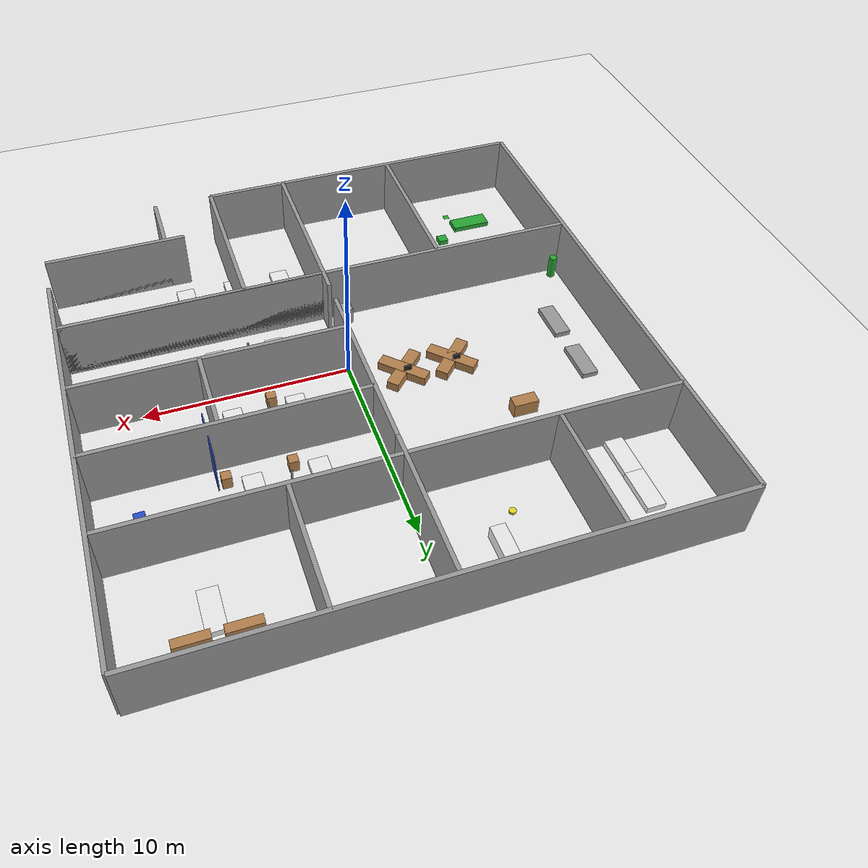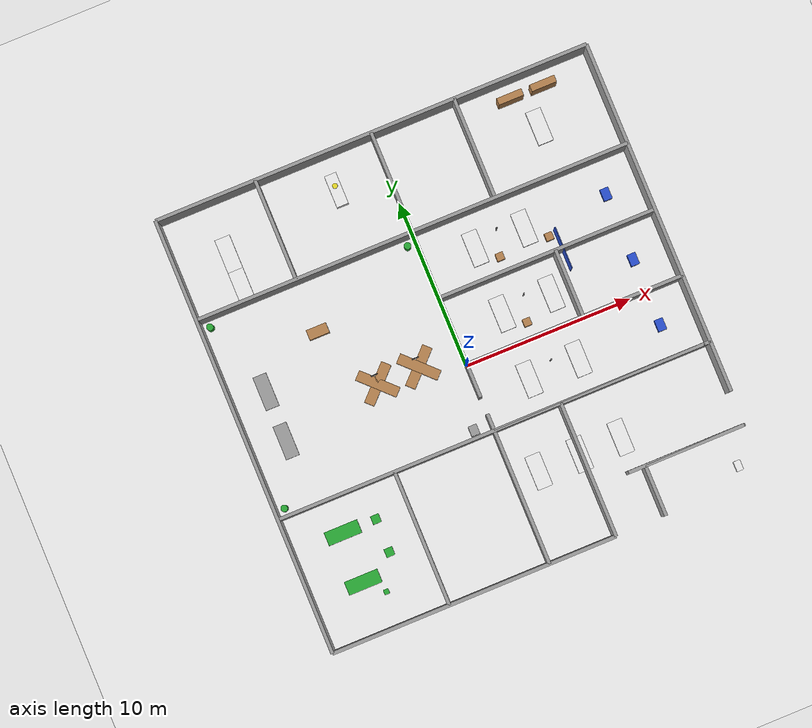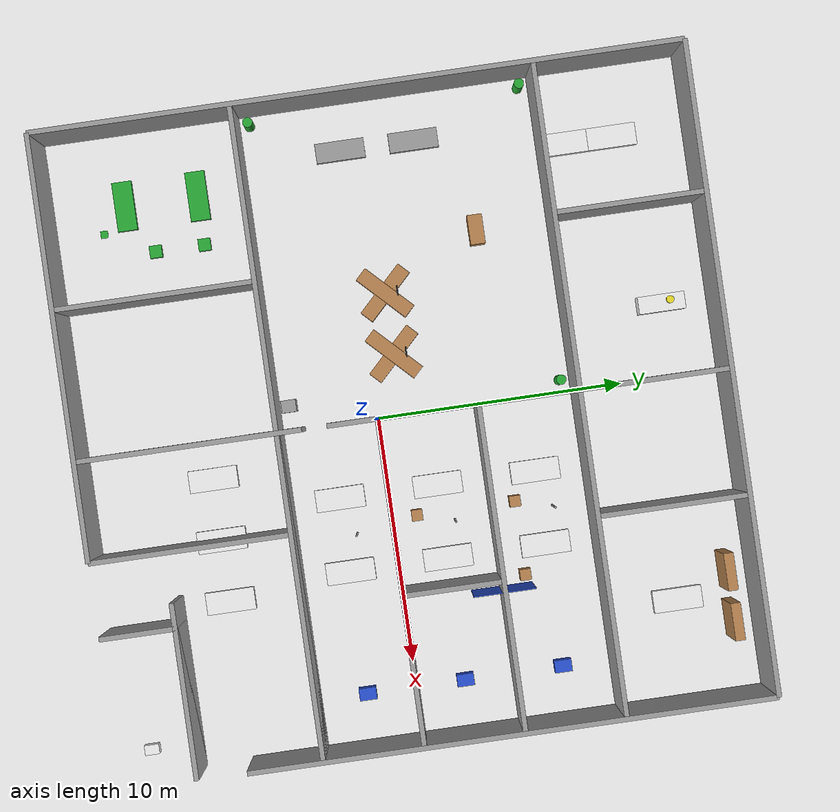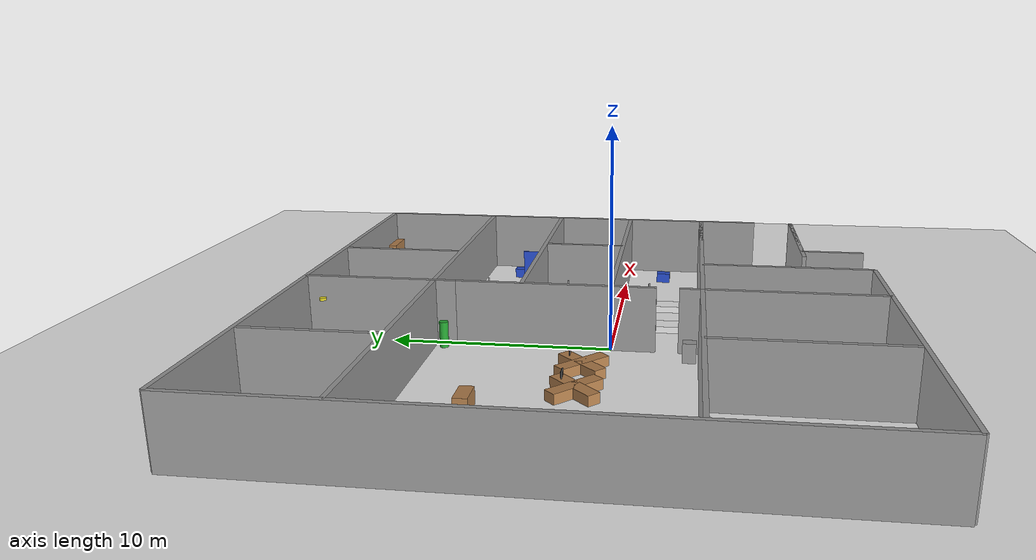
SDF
<?xml version="1.0" ?>
<sdf version="1.6">
  <world name="hospital">

    <!-- ==================== PHYSICS & SCENE ==================== -->
    <physics name="default_physics" default="0" type="ode">
      <max_step_size>0.001</max_step_size>
      <real_time_factor>1</real_time_factor>
      <real_time_update_rate>1000</real_time_update_rate>
    </physics>

    <scene>
      <ambient>0.6 0.6 0.6 1</ambient>
      <background>0.7 0.72 0.75 1</background>
      <shadows>1</shadows>
    </scene>

    <!-- ==================== LIGHTING ==================== -->
    <light name="sun" type="directional">
      <cast_shadows>1</cast_shadows>
      <pose>0 0 20 0 -0 0</pose>
      <diffuse>0.9 0.9 0.9 1</diffuse>
      <specular>0.3 0.3 0.3 1</specular>
      <direction>-0.3 0.2 -0.9</direction>
      <attenuation><range>1000</range><constant>0.9</constant><linear>0.01</linear><quadratic>0.001</quadratic></attenuation>
    </light>

    <light name="ceiling_main" type="point">
      <pose>0 0 3.8 0 0 0</pose>
      <diffuse>0.85 0.85 0.9 1</diffuse>
      <specular>0.1 0.1 0.1 1</specular>
      <attenuation><range>30</range><constant>0.5</constant><linear>0.05</linear><quadratic>0.002</quadratic></attenuation>
      <cast_shadows>0</cast_shadows>
    </light>

    <light name="ceiling_ward" type="point">
      <pose>-8 2 3.8 0 0 0</pose>
      <diffuse>0.85 0.85 0.9 1</diffuse>
      <specular>0.1 0.1 0.1 1</specular>
      <attenuation><range>25</range><constant>0.5</constant><linear>0.06</linear><quadratic>0.002</quadratic></attenuation>
      <cast_shadows>0</cast_shadows>
    </light>

    <light name="ceiling_rooms" type="point">
      <pose>8 3 3.8 0 0 0</pose>
      <diffuse>0.85 0.85 0.9 1</diffuse>
      <specular>0.1 0.1 0.1 1</specular>
      <attenuation><range>20</range><constant>0.5</constant><linear>0.07</linear><quadratic>0.002</quadratic></attenuation>
      <cast_shadows>0</cast_shadows>
    </light>

    <!-- ==================== GROUND PLANE ==================== -->
    <model name="ground_plane">
      <static>1</static>
      <link name="link">
        <collision name="collision">
          <geometry><plane><normal>0 0 1</normal><size>100 100</size></plane></geometry>
        </collision>
        <visual name="visual">
          <geometry><plane><normal>0 0 1</normal><size>100 100</size></plane></geometry>
          <material>
            <script><uri>file://media/materials/scripts/gazebo.material</uri><name>Gazebo/White</name></script>
          </material>
        </visual>
      </link>
    </model>

    <!-- ==================== HOSPITAL BUILDING ==================== -->

    <!-- OUTER WALLS -->
    <!-- North wall (top) -->
    <model name="wall_north">
      <static>1</static>
      <pose>0 14 1.5 0 0 0</pose>
      <link name="link">
        <collision name="c"><geometry><box><size>26 0.2 3</size></box></geometry></collision>
        <visual name="v"><geometry><box><size>26 0.2 3</size></box></geometry>
          <material><script><uri>file://media/materials/scripts/gazebo.material</uri><name>Gazebo/Grey</name></script></material>
        </visual>
      </link>
    </model>

    <!-- South wall (bottom) - two segments (notch bottom-right) -->
    <model name="wall_south_left">
      <static>1</static>
      <pose>-4.5 -12 1.5 0 0 0</pose>
      <link name="link">
        <collision name="c"><geometry><box><size>17 0.2 3</size></box></geometry></collision>
        <visual name="v"><geometry><box><size>17 0.2 3</size></box></geometry>
          <material><script><uri>file://media/materials/scripts/gazebo.material</uri><name>Gazebo/Grey</name></script></material>
        </visual>
      </link>
    </model>

    <model name="wall_south_right">
      <static>1</static>
      <pose>9.5 -9 1.5 0 0 0</pose>
      <link name="link">
        <collision name="c"><geometry><box><size>7 0.2 3</size></box></geometry></collision>
        <visual name="v"><geometry><box><size>7 0.2 3</size></box></geometry>
          <material><script><uri>file://media/materials/scripts/gazebo.material</uri><name>Gazebo/Grey</name></script></material>
        </visual>
      </link>
    </model>

    <!-- West wall -->
    <model name="wall_west">
      <static>1</static>
      <pose>-13 1 1.5 0 0 0</pose>
      <link name="link">
        <collision name="c"><geometry><box><size>0.2 26 3</size></box></geometry></collision>
        <visual name="v"><geometry><box><size>0.2 26 3</size></box></geometry>
          <material><script><uri>file://media/materials/scripts/gazebo.material</uri><name>Gazebo/Grey</name></script></material>
        </visual>
      </link>
    </model>

    <!-- East wall - two segments (notch bottom-right) -->
    <model name="wall_east_top">
      <static>1</static>
      <pose>13 3.5 1.5 0 0 0</pose>
      <link name="link">
        <collision name="c"><geometry><box><size>0.2 21 3</size></box></geometry></collision>
        <visual name="v"><geometry><box><size>0.2 21 3</size></box></geometry>
          <material><script><uri>file://media/materials/scripts/gazebo.material</uri><name>Gazebo/Grey</name></script></material>
        </visual>
      </link>
    </model>

    <model name="wall_east_notch_h">
      <static>1</static>
      <pose>10 -9 1.5 0 0 0</pose>
      <link name="link">
        <collision name="c"><geometry><box><size>6 0.2 3</size></box></geometry></collision>
        <visual name="v"><geometry><box><size>6 0.2 3</size></box></geometry>
          <material><script><uri>file://media/materials/scripts/gazebo.material</uri><name>Gazebo/Grey</name></script></material>
        </visual>
      </link>
    </model>

    <model name="wall_east_notch_v">
      <static>1</static>
      <pose>7 -10.5 1.5 0 0 0</pose>
      <link name="link">
        <collision name="c"><geometry><box><size>0.2 3 3</size></box></geometry></collision>
        <visual name="v"><geometry><box><size>0.2 3 3</size></box></geometry>
          <material><script><uri>file://media/materials/scripts/gazebo.material</uri><name>Gazebo/Grey</name></script></material>
        </visual>
      </link>
    </model>

    <!-- ====== INTERNAL WALLS ====== -->

    <!-- Main N-S divider (left/right split) -->
    <model name="wall_ns_main_top">
      <static>1</static>
      <pose>0 10.5 1.5 0 0 0</pose>
      <link name="link">
        <collision name="c"><geometry><box><size>0.2 7 3</size></box></geometry></collision>
        <visual name="v"><geometry><box><size>0.2 7 3</size></box></geometry>
          <material><script><uri>file://media/materials/scripts/gazebo.material</uri><name>Gazebo/Grey</name></script></material>
        </visual>
      </link>
    </model>

    <!-- gap for door at y=7, then continue -->
    <model name="wall_ns_main_mid">
      <static>1</static>
      <pose>0 2.5 1.5 0 0 0</pose>
      <link name="link">
        <collision name="c"><geometry><box><size>0.2 9 3</size></box></geometry></collision>
        <visual name="v"><geometry><box><size>0.2 9 3</size></box></geometry>
          <material><script><uri>file://media/materials/scripts/gazebo.material</uri><name>Gazebo/Grey</name></script></material>
        </visual>
      </link>
    </model>

    <model name="wall_ns_main_bot">
      <static>1</static>
      <pose>0 -7.5 1.5 0 0 0</pose>
      <link name="link">
        <collision name="c"><geometry><box><size>0.2 9 3</size></box></geometry></collision>
        <visual name="v"><geometry><box><size>0.2 9 3</size></box></geometry>
          <material><script><uri>file://media/materials/scripts/gazebo.material</uri><name>Gazebo/Grey</name></script></material>
        </visual>
      </link>
    </model>

    <!-- Top zone E-W divider -->
    <model name="wall_ew_top">
      <static>1</static>
      <pose>0 8 1.5 0 0 0</pose>
      <link name="link">
        <collision name="c"><geometry><box><size>26 0.2 3</size></box></geometry></collision>
        <visual name="v"><geometry><box><size>26 0.2 3</size></box></geometry>
          <material><script><uri>file://media/materials/scripts/gazebo.material</uri><name>Gazebo/Grey</name></script></material>
        </visual>
      </link>
    </model>

    <!-- Top-left room dividers -->
    <model name="wall_topleft_v">
      <static>1</static>
      <pose>-7 11 1.5 0 0 0</pose>
      <link name="link">
        <collision name="c"><geometry><box><size>0.2 6 3</size></box></geometry></collision>
        <visual name="v"><geometry><box><size>0.2 6 3</size></box></geometry>
          <material><script><uri>file://media/materials/scripts/gazebo.material</uri><name>Gazebo/Grey</name></script></material>
        </visual>
      </link>
    </model>

    <!-- Top-right room dividers -->
    <model name="wall_topright_v1">
      <static>1</static>
      <pose>5 11 1.5 0 0 0</pose>
      <link name="link">
        <collision name="c"><geometry><box><size>0.2 6 3</size></box></geometry></collision>
        <visual name="v"><geometry><box><size>0.2 6 3</size></box></geometry>
          <material><script><uri>file://media/materials/scripts/gazebo.material</uri><name>Gazebo/Grey</name></script></material>
        </visual>
      </link>
    </model>

    <!-- Right side patient room dividers (horizontal) -->
    <model name="wall_right_h1">
      <static>1</static>
      <pose>6.5 4 1.5 0 0 0</pose>
      <link name="link">
        <collision name="c"><geometry><box><size>13 0.2 3</size></box></geometry></collision>
        <visual name="v"><geometry><box><size>13 0.2 3</size></box></geometry>
          <material><script><uri>file://media/materials/scripts/gazebo.material</uri><name>Gazebo/Grey</name></script></material>
        </visual>
      </link>
    </model>

    <model name="wall_right_h2">
      <static>1</static>
      <pose>6.5 0 1.5 0 0 0</pose>
      <link name="link">
        <collision name="c"><geometry><box><size>13 0.2 3</size></box></geometry></collision>
        <visual name="v"><geometry><box><size>13 0.2 3</size></box></geometry>
          <material><script><uri>file://media/materials/scripts/gazebo.material</uri><name>Gazebo/Grey</name></script></material>
        </visual>
      </link>
    </model>

    <model name="wall_right_h3">
      <static>1</static>
      <pose>6.5 -4 1.5 0 0 0</pose>
      <link name="link">
        <collision name="c"><geometry><box><size>13 0.2 3</size></box></geometry></collision>
        <visual name="v"><geometry><box><size>13 0.2 3</size></box></geometry>
          <material><script><uri>file://media/materials/scripts/gazebo.material</uri><name>Gazebo/Grey</name></script></material>
        </visual>
      </link>
    </model>

    <!-- Right side room vertical divider (ICU corridor) -->
    <model name="wall_right_v_mid">
      <static>1</static>
      <pose>7 2 1.5 0 0 0</pose>
      <link name="link">
        <collision name="c"><geometry><box><size>0.2 4 3</size></box></geometry></collision>
        <visual name="v"><geometry><box><size>0.2 4 3</size></box></geometry>
          <material><script><uri>file://media/materials/scripts/gazebo.material</uri><name>Gazebo/Grey</name></script></material>
        </visual>
      </link>
    </model>

    <!-- Bottom zone E-W divider -->
    <model name="wall_ew_bottom">
      <static>1</static>
      <pose>0 -4 1.5 0 0 0</pose>
      <link name="link">
        <collision name="c"><geometry><box><size>26 0.2 3</size></box></geometry></collision>
        <visual name="v"><geometry><box><size>26 0.2 3</size></box></geometry>
          <material><script><uri>file://media/materials/scripts/gazebo.material</uri><name>Gazebo/Grey</name></script></material>
        </visual>
      </link>
    </model>

    <!-- Bottom-left waiting area internal wall -->
    <model name="wall_waiting_v">
      <static>1</static>
      <pose>-6 -8 1.5 0 0 0</pose>
      <link name="link">
        <collision name="c"><geometry><box><size>0.2 8 3</size></box></geometry></collision>
        <visual name="v"><geometry><box><size>0.2 8 3</size></box></geometry>
          <material><script><uri>file://media/materials/scripts/gazebo.material</uri><name>Gazebo/Grey</name></script></material>
        </visual>
      </link>
    </model>

    <!-- Bottom patient ward vertical dividers -->
    <model name="wall_botward_v1">
      <static>1</static>
      <pose>4 -8 1.5 0 0 0</pose>
      <link name="link">
        <collision name="c"><geometry><box><size>0.2 8 3</size></box></geometry></collision>
        <visual name="v"><geometry><box><size>0.2 8 3</size></box></geometry>
          <material><script><uri>file://media/materials/scripts/gazebo.material</uri><name>Gazebo/Grey</name></script></material>
        </visual>
      </link>
    </model>

    <!-- ==================== EQUIPMENT & FURNITURE ==================== -->

    <!-- === NURSE STATION AREA (open ward center-left) === -->
    <!-- Two curved desk units approximated with box models -->
    <model name="nurse_desk_1">
      <static>1</static>
      <pose>-5 1 0 0 0 0.785</pose>
      <link name="link">
        <collision name="c"><geometry><box><size>2.5 0.6 0.85</size></box></geometry></collision>
        <visual name="v"><geometry><box><size>2.5 0.6 0.85</size></box></geometry>
          <material><script><uri>file://media/materials/scripts/gazebo.material</uri><name>Gazebo/Wood</name></script></material>
        </visual>
      </link>
    </model>

    <model name="nurse_desk_2">
      <static>1</static>
      <pose>-5 1 0 0 0 -0.785</pose>
      <link name="link">
        <collision name="c"><geometry><box><size>2.5 0.6 0.85</size></box></geometry></collision>
        <visual name="v"><geometry><box><size>2.5 0.6 0.85</size></box></geometry>
          <material><script><uri>file://media/materials/scripts/gazebo.material</uri><name>Gazebo/Wood</name></script></material>
        </visual>
      </link>
    </model>

    <model name="nurse_desk_3">
      <static>1</static>
      <pose>-2.5 1 0 0 0 0.785</pose>
      <link name="link">
        <collision name="c"><geometry><box><size>2.5 0.6 0.85</size></box></geometry></collision>
        <visual name="v"><geometry><box><size>2.5 0.6 0.85</size></box></geometry>
          <material><script><uri>file://media/materials/scripts/gazebo.material</uri><name>Gazebo/Wood</name></script></material>
        </visual>
      </link>
    </model>

    <model name="nurse_desk_4">
      <static>1</static>
      <pose>-2.5 1 0 0 0 -0.785</pose>
      <link name="link">
        <collision name="c"><geometry><box><size>2.5 0.6 0.85</size></box></geometry></collision>
        <visual name="v"><geometry><box><size>2.5 0.6 0.85</size></box></geometry>
          <material><script><uri>file://media/materials/scripts/gazebo.material</uri><name>Gazebo/Wood</name></script></material>
        </visual>
      </link>
    </model>

    <!-- === PATIENT BEDS (right side rooms) === -->
    <!-- Room top-right (y=4..8, x=0..13) - 2 beds -->
    <model name="bed_tr_1">
      <static>1</static>
      <pose>3 6 0 0 0 0</pose>
      <link name="link">
        <collision name="c"><geometry><box><size>0.9 2.0 0.55</size></box></geometry></collision>
        <visual name="v"><geometry><box><size>0.9 2.0 0.55</size></box></geometry>
          <material><script><uri>file://media/materials/scripts/gazebo.material</uri><name>Gazebo/White</name></script></material>
        </visual>
      </link>
    </model>

    <model name="bed_tr_2">
      <static>1</static>
      <pose>6 6 0 0 0 0</pose>
      <link name="link">
        <collision name="c"><geometry><box><size>0.9 2.0 0.55</size></box></geometry></collision>
        <visual name="v"><geometry><box><size>0.9 2.0 0.55</size></box></geometry>
          <material><script><uri>file://media/materials/scripts/gazebo.material</uri><name>Gazebo/White</name></script></material>
        </visual>
      </link>
    </model>

    <!-- Room mid-right (y=0..4, x=0..13) - 2 beds -->
    <model name="bed_mr_1">
      <static>1</static>
      <pose>3 2 0 0 0 0</pose>
      <link name="link">
        <collision name="c"><geometry><box><size>0.9 2.0 0.55</size></box></geometry></collision>
        <visual name="v"><geometry><box><size>0.9 2.0 0.55</size></box></geometry>
          <material><script><uri>file://media/materials/scripts/gazebo.material</uri><name>Gazebo/White</name></script></material>
        </visual>
      </link>
    </model>

    <model name="bed_mr_2">
      <static>1</static>
      <pose>6 2 0 0 0 0</pose>
      <link name="link">
        <collision name="c"><geometry><box><size>0.9 2.0 0.55</size></box></geometry></collision>
        <visual name="v"><geometry><box><size>0.9 2.0 0.55</size></box></geometry>
          <material><script><uri>file://media/materials/scripts/gazebo.material</uri><name>Gazebo/White</name></script></material>
        </visual>
      </link>
    </model>

    <!-- Room lower-right (y=-4..0, x=0..13) - 2 beds -->
    <model name="bed_lr_1">
      <static>1</static>
      <pose>3 -2 0 0 0 0</pose>
      <link name="link">
        <collision name="c"><geometry><box><size>0.9 2.0 0.55</size></box></geometry></collision>
        <visual name="v"><geometry><box><size>0.9 2.0 0.55</size></box></geometry>
          <material><script><uri>file://media/materials/scripts/gazebo.material</uri><name>Gazebo/White</name></script></material>
        </visual>
      </link>
    </model>

    <model name="bed_lr_2">
      <static>1</static>
      <pose>6 -2 0 0 0 0</pose>
      <link name="link">
        <collision name="c"><geometry><box><size>0.9 2.0 0.55</size></box></geometry></collision>
        <visual name="v"><geometry><box><size>0.9 2.0 0.55</size></box></geometry>
          <material><script><uri>file://media/materials/scripts/gazebo.material</uri><name>Gazebo/White</name></script></material>
        </visual>
      </link>
    </model>

    <!-- Bottom ward beds (y=-12..-4, x=0..7) - 3 beds -->
    <model name="bed_bot_1">
      <static>1</static>
      <pose>1.5 -7 0 0 0 0</pose>
      <link name="link">
        <collision name="c"><geometry><box><size>0.9 2.0 0.55</size></box></geometry></collision>
        <visual name="v"><geometry><box><size>0.9 2.0 0.55</size></box></geometry>
          <material><script><uri>file://media/materials/scripts/gazebo.material</uri><name>Gazebo/White</name></script></material>
        </visual>
      </link>
    </model>

    <model name="bed_bot_2">
      <static>1</static>
      <pose>4 -7 0 0 0 0</pose>
      <link name="link">
        <collision name="c"><geometry><box><size>0.9 2.0 0.55</size></box></geometry></collision>
        <visual name="v"><geometry><box><size>0.9 2.0 0.55</size></box></geometry>
          <material><script><uri>file://media/materials/scripts/gazebo.material</uri><name>Gazebo/White</name></script></material>
        </visual>
      </link>
    </model>

    <model name="bed_bot_3">
      <static>1</static>
      <pose>6.5 -7 0 0 0 0</pose>
      <link name="link">
        <collision name="c"><geometry><box><size>0.9 2.0 0.55</size></box></geometry></collision>
        <visual name="v"><geometry><box><size>0.9 2.0 0.55</size></box></geometry>
          <material><script><uri>file://media/materials/scripts/gazebo.material</uri><name>Gazebo/White</name></script></material>
        </visual>
      </link>
    </model>

    <!-- Top-left patient rooms beds -->
    <model name="bed_topleft_1">
      <static>1</static>
      <pose>-10 11 0 0 0 0</pose>
      <link name="link">
        <collision name="c"><geometry><box><size>0.9 2.0 0.55</size></box></geometry></collision>
        <visual name="v"><geometry><box><size>0.9 2.0 0.55</size></box></geometry>
          <material><script><uri>file://media/materials/scripts/gazebo.material</uri><name>Gazebo/White</name></script></material>
        </visual>
      </link>
    </model>

    <model name="bed_topleft_2">
      <static>1</static>
      <pose>-10 9 0 0 0 0</pose>
      <link name="link">
        <collision name="c"><geometry><box><size>0.9 2.0 0.55</size></box></geometry></collision>
        <visual name="v"><geometry><box><size>0.9 2.0 0.55</size></box></geometry>
          <material><script><uri>file://media/materials/scripts/gazebo.material</uri><name>Gazebo/White</name></script></material>
        </visual>
      </link>
    </model>

    <!-- Top-right patient/exam room beds -->
    <model name="bed_topright_1">
      <static>1</static>
      <pose>9 11 0 0 0 0</pose>
      <link name="link">
        <collision name="c"><geometry><box><size>0.9 2.0 0.55</size></box></geometry></collision>
        <visual name="v"><geometry><box><size>0.9 2.0 0.55</size></box></geometry>
          <material><script><uri>file://media/materials/scripts/gazebo.material</uri><name>Gazebo/White</name></script></material>
        </visual>
      </link>
    </model>

    <!-- === IV POLES (simple cylinder models) === -->
    <model name="iv_pole_1">
      <static>1</static>
      <pose>4.5 6.5 0 0 0 0</pose>
      <link name="link">
        <collision name="c"><geometry><cylinder><radius>0.04</radius><length>1.8</length></cylinder></geometry></collision>
        <visual name="v">
          <pose>0 0 0.9 0 0 0</pose>
          <geometry><cylinder><radius>0.04</radius><length>1.8</length></cylinder></geometry>
          <material><script><uri>file://media/materials/scripts/gazebo.material</uri><name>Gazebo/Grey</name></script></material>
        </visual>
      </link>
    </model>

    <model name="iv_pole_2">
      <static>1</static>
      <pose>4.5 2.5 0 0 0 0</pose>
      <link name="link">
        <collision name="c"><geometry><cylinder><radius>0.04</radius><length>1.8</length></cylinder></geometry></collision>
        <visual name="v">
          <pose>0 0 0.9 0 0 0</pose>
          <geometry><cylinder><radius>0.04</radius><length>1.8</length></cylinder></geometry>
          <material><script><uri>file://media/materials/scripts/gazebo.material</uri><name>Gazebo/Grey</name></script></material>
        </visual>
      </link>
    </model>

    <model name="iv_pole_3">
      <static>1</static>
      <pose>4.5 -1.5 0 0 0 0</pose>
      <link name="link">
        <collision name="c"><geometry><cylinder><radius>0.04</radius><length>1.8</length></cylinder></geometry></collision>
        <visual name="v">
          <pose>0 0 0.9 0 0 0</pose>
          <geometry><cylinder><radius>0.04</radius><length>1.8</length></cylinder></geometry>
          <material><script><uri>file://media/materials/scripts/gazebo.material</uri><name>Gazebo/Grey</name></script></material>
        </visual>
      </link>
    </model>

    <!-- === MEDICAL EQUIPMENT CARTS === -->
    <model name="med_cart_1">
      <static>1</static>
      <pose>11 6 0 0 0 0</pose>
      <link name="link">
        <collision name="c"><geometry><box><size>0.5 0.7 0.9</size></box></geometry></collision>
        <visual name="v"><geometry><box><size>0.5 0.7 0.9</size></box></geometry>
          <material><script><uri>file://media/materials/scripts/gazebo.material</uri><name>Gazebo/Blue</name></script></material>
        </visual>
      </link>
    </model>

    <model name="med_cart_2">
      <static>1</static>
      <pose>11 2 0 0 0 0</pose>
      <link name="link">
        <collision name="c"><geometry><box><size>0.5 0.7 0.9</size></box></geometry></collision>
        <visual name="v"><geometry><box><size>0.5 0.7 0.9</size></box></geometry>
          <material><script><uri>file://media/materials/scripts/gazebo.material</uri><name>Gazebo/Blue</name></script></material>
        </visual>
      </link>
    </model>

    <model name="med_cart_3">
      <static>1</static>
      <pose>11 -2 0 0 0 0</pose>
      <link name="link">
        <collision name="c"><geometry><box><size>0.5 0.7 0.9</size></box></geometry></collision>
        <visual name="v"><geometry><box><size>0.5 0.7 0.9</size></box></geometry>
          <material><script><uri>file://media/materials/scripts/gazebo.material</uri><name>Gazebo/Blue</name></script></material>
        </visual>
      </link>
    </model>

    <!-- === WAITING AREA SOFAS (bottom-left) === -->
    <!-- Approximated with box models -->
    <model name="sofa_1">
      <static>1</static>
      <pose>-10 -6 0 0 0 0</pose>
      <link name="link">
        <collision name="c"><geometry><box><size>2.0 0.8 0.45</size></box></geometry></collision>
        <visual name="v"><geometry><box><size>2.0 0.8 0.45</size></box></geometry>
          <material><script><uri>file://media/materials/scripts/gazebo.material</uri><name>Gazebo/Green</name></script></material>
        </visual>
      </link>
    </model>

    <model name="sofa_2">
      <static>1</static>
      <pose>-10 -9 0 0 0 0</pose>
      <link name="link">
        <collision name="c"><geometry><box><size>2.0 0.8 0.45</size></box></geometry></collision>
        <visual name="v"><geometry><box><size>2.0 0.8 0.45</size></box></geometry>
          <material><script><uri>file://media/materials/scripts/gazebo.material</uri><name>Gazebo/Green</name></script></material>
        </visual>
      </link>
    </model>

    <!-- Waiting area chairs -->
    <model name="chair_wait_1">
      <static>1</static>
      <pose>-8 -6 0 0 0 0</pose>
      <link name="link">
        <collision name="c"><geometry><box><size>0.5 0.5 0.45</size></box></geometry></collision>
        <visual name="v"><geometry><box><size>0.5 0.5 0.45</size></box></geometry>
          <material><script><uri>file://media/materials/scripts/gazebo.material</uri><name>Gazebo/Green</name></script></material>
        </visual>
      </link>
    </model>

    <model name="chair_wait_2">
      <static>1</static>
      <pose>-8 -8 0 0 0 0</pose>
      <link name="link">
        <collision name="c"><geometry><box><size>0.5 0.5 0.45</size></box></geometry></collision>
        <visual name="v"><geometry><box><size>0.5 0.5 0.45</size></box></geometry>
          <material><script><uri>file://media/materials/scripts/gazebo.material</uri><name>Gazebo/Green</name></script></material>
        </visual>
      </link>
    </model>

    <!-- === OPEN WARD SOFAS (left side) === -->
    <model name="sofa_ward_1">
      <static>1</static>
      <pose>-11 3 0 0 0 1.5708</pose>
      <link name="link">
        <collision name="c"><geometry><box><size>2.0 0.8 0.45</size></box></geometry></collision>
        <visual name="v"><geometry><box><size>2.0 0.8 0.45</size></box></geometry>
          <material><script><uri>file://media/materials/scripts/gazebo.material</uri><name>Gazebo/Grey</name></script></material>
        </visual>
      </link>
    </model>

    <model name="sofa_ward_2">
      <static>1</static>
      <pose>-11 0 0 0 0 1.5708</pose>
      <link name="link">
        <collision name="c"><geometry><box><size>2.0 0.8 0.45</size></box></geometry></collision>
        <visual name="v"><geometry><box><size>2.0 0.8 0.45</size></box></geometry>
          <material><script><uri>file://media/materials/scripts/gazebo.material</uri><name>Gazebo/Grey</name></script></material>
        </visual>
      </link>
    </model>

    <!-- === STORAGE / SHELF UNITS === -->
    <model name="shelf_1">
      <static>1</static>
      <pose>8 13 0 0 0 0</pose>
      <link name="link">
        <collision name="c"><geometry><box><size>1.5 0.4 2.0</size></box></geometry></collision>
        <visual name="v">
          <pose>0 0 1.0 0 0 0</pose>
          <geometry><box><size>1.5 0.4 2.0</size></box></geometry>
          <material><script><uri>file://media/materials/scripts/gazebo.material</uri><name>Gazebo/Wood</name></script></material>
        </visual>
      </link>
    </model>

    <model name="shelf_2">
      <static>1</static>
      <pose>10 13 0 0 0 0</pose>
      <link name="link">
        <collision name="c"><geometry><box><size>1.5 0.4 2.0</size></box></geometry></collision>
        <visual name="v">
          <pose>0 0 1.0 0 0 0</pose>
          <geometry><box><size>1.5 0.4 2.0</size></box></geometry>
          <material><script><uri>file://media/materials/scripts/gazebo.material</uri><name>Gazebo/Wood</name></script></material>
        </visual>
      </link>
    </model>

    <!-- === TABLES (ward center) === -->
    <model name="table_center_1">
      <static>1</static>
      <pose>-7 5 0 0 0 0</pose>
      <link name="link">
        <collision name="c"><geometry><box><size>1.2 0.6 0.75</size></box></geometry></collision>
        <visual name="v">
          <pose>0 0 0.375 0 0 0</pose>
          <geometry><box><size>1.2 0.6 0.75</size></box></geometry>
          <material><script><uri>file://media/materials/scripts/gazebo.material</uri><name>Gazebo/Wood</name></script></material>
        </visual>
      </link>
    </model>

    <!-- === PLANTS (corridors/waiting) === -->
    <model name="plant_1">
      <static>1</static>
      <pose>-12.5 7.5 0 0 0 0</pose>
      <link name="link">
        <collision name="c"><geometry><cylinder><radius>0.2</radius><length>1.2</length></cylinder></geometry></collision>
        <visual name="v">
          <pose>0 0 0.6 0 0 0</pose>
          <geometry><cylinder><radius>0.2</radius><length>1.2</length></cylinder></geometry>
          <material><script><uri>file://media/materials/scripts/gazebo.material</uri><name>Gazebo/Green</name></script></material>
        </visual>
      </link>
    </model>

    <model name="plant_2">
      <static>1</static>
      <pose>-0.5 7.5 0 0 0 0</pose>
      <link name="link">
        <collision name="c"><geometry><cylinder><radius>0.2</radius><length>1.2</length></cylinder></geometry></collision>
        <visual name="v">
          <pose>0 0 0.6 0 0 0</pose>
          <geometry><cylinder><radius>0.2</radius><length>1.2</length></cylinder></geometry>
          <material><script><uri>file://media/materials/scripts/gazebo.material</uri><name>Gazebo/Green</name></script></material>
        </visual>
      </link>
    </model>

    <model name="plant_3">
      <static>1</static>
      <pose>-12.5 -3.5 0 0 0 0</pose>
      <link name="link">
        <collision name="c"><geometry><cylinder><radius>0.2</radius><length>1.2</length></cylinder></geometry></collision>
        <visual name="v">
          <pose>0 0 0.6 0 0 0</pose>
          <geometry><cylinder><radius>0.2</radius><length>1.2</length></cylinder></geometry>
          <material><script><uri>file://media/materials/scripts/gazebo.material</uri><name>Gazebo/Green</name></script></material>
        </visual>
      </link>
    </model>

    <!-- === MONITOR/EQUIPMENT SCREENS (nurse desks) === -->
    <model name="monitor_1">
      <static>1</static>
      <pose>-5 1.5 0.85 0 0 0</pose>
      <link name="link">
        <collision name="c"><geometry><box><size>0.4 0.05 0.3</size></box></geometry></collision>
        <visual name="v"><geometry><box><size>0.4 0.05 0.3</size></box></geometry>
          <material><script><uri>file://media/materials/scripts/gazebo.material</uri><name>Gazebo/Black</name></script></material>
        </visual>
      </link>
    </model>

    <model name="monitor_2">
      <static>1</static>
      <pose>-2.5 1.5 0.85 0 0 0</pose>
      <link name="link">
        <collision name="c"><geometry><box><size>0.4 0.05 0.3</size></box></geometry></collision>
        <visual name="v"><geometry><box><size>0.4 0.05 0.3</size></box></geometry>
          <material><script><uri>file://media/materials/scripts/gazebo.material</uri><name>Gazebo/Black</name></script></material>
        </visual>
      </link>
    </model>

    <!-- === WHEELCHAIR (corridor) === -->
    <model name="wheelchair_1">
      <static>1</static>
      <pose>-1 -3.5 0 0 0 1.5708</pose>
      <link name="link">
        <collision name="c"><geometry><box><size>0.6 0.5 0.9</size></box></geometry></collision>
        <visual name="v">
          <pose>0 0 0.45 0 0 0</pose>
          <geometry><box><size>0.6 0.5 0.9</size></box></geometry>
          <material><script><uri>file://media/materials/scripts/gazebo.material</uri><name>Gazebo/Grey</name></script></material>
        </visual>
      </link>
    </model>

    <!-- === EXAM TABLE (top-center room) === -->
    <model name="exam_table_1">
      <static>1</static>
      <pose>-3 12 0 0 0 0</pose>
      <link name="link">
        <collision name="c"><geometry><box><size>0.7 1.9 0.7</size></box></geometry></collision>
        <visual name="v">
          <pose>0 0 0.35 0 0 0</pose>
          <geometry><box><size>0.7 1.9 0.7</size></box></geometry>
          <material><script><uri>file://media/materials/scripts/gazebo.material</uri><name>Gazebo/White</name></script></material>
        </visual>
      </link>
    </model>

    <!-- Overhead lamp above exam table -->
    <model name="exam_lamp">
      <static>1</static>
      <pose>-3 12 2.9 0 0 0</pose>
      <link name="link">
        <collision name="c"><geometry><cylinder><radius>0.15</radius><length>0.1</length></cylinder></geometry></collision>
        <visual name="v"><geometry><cylinder><radius>0.15</radius><length>0.1</length></cylinder></geometry>
          <material><script><uri>file://media/materials/scripts/gazebo.material</uri><name>Gazebo/Yellow</name></script></material>
        </visual>
      </link>
    </model>

    <light name="exam_light" type="spot">
      <pose>-3 12 2.9 0 1.5708 0</pose>
      <diffuse>1 1 0.9 1</diffuse>
      <specular>0.2 0.2 0.2 1</specular>
      <attenuation><range>4</range><constant>0.3</constant><linear>0.2</linear><quadratic>0.05</quadratic></attenuation>
      <direction>0 0 -1</direction>
      <spot><inner_angle>0.5</inner_angle><outer_angle>1.0</outer_angle><falloff>1</falloff></spot>
      <cast_shadows>0</cast_shadows>
    </light>

    <!-- === BEDSIDE TABLES === -->
    <model name="bedside_1">
      <static>1</static>
      <pose>4.1 5 0 0 0 0</pose>
      <link name="link">
        <collision name="c"><geometry><box><size>0.45 0.45 0.65</size></box></geometry></collision>
        <visual name="v">
          <pose>0 0 0.325 0 0 0</pose>
          <geometry><box><size>0.45 0.45 0.65</size></box></geometry>
          <material><script><uri>file://media/materials/scripts/gazebo.material</uri><name>Gazebo/Wood</name></script></material>
        </visual>
      </link>
    </model>

    <model name="bedside_2">
      <static>1</static>
      <pose>7.1 5 0 0 0 0</pose>
      <link name="link">
        <collision name="c"><geometry><box><size>0.45 0.45 0.65</size></box></geometry></collision>
        <visual name="v">
          <pose>0 0 0.325 0 0 0</pose>
          <geometry><box><size>0.45 0.45 0.65</size></box></geometry>
          <material><script><uri>file://media/materials/scripts/gazebo.material</uri><name>Gazebo/Wood</name></script></material>
        </visual>
      </link>
    </model>

    <model name="bedside_3">
      <static>1</static>
      <pose>4.1 1 0 0 0 0</pose>
      <link name="link">
        <collision name="c"><geometry><box><size>0.45 0.45 0.65</size></box></geometry></collision>
        <visual name="v">
          <pose>0 0 0.325 0 0 0</pose>
          <geometry><box><size>0.45 0.45 0.65</size></box></geometry>
          <material><script><uri>file://media/materials/scripts/gazebo.material</uri><name>Gazebo/Wood</name></script></material>
        </visual>
      </link>
    </model>

    <!-- === PRIVACY SCREENS / CURTAIN DIVIDERS === -->
    <model name="curtain_1">
      <static>1</static>
      <pose>7.5 4 1.2 0 0 0</pose>
      <link name="link">
        <collision name="c"><geometry><box><size>0.05 2.5 2.4</size></box></geometry></collision>
        <visual name="v"><geometry><box><size>0.05 2.5 2.4</size></box></geometry>
          <material><script><uri>file://media/materials/scripts/gazebo.material</uri><name>Gazebo/Blue</name></script></material>
        </visual>
      </link>
    </model>

    <!-- === BATHROOM FIXTURES (small rooms) === -->
    <model name="toilet_1">
      <static>1</static>
      <pose>12 -11 0 0 0 0</pose>
      <link name="link">
        <collision name="c"><geometry><box><size>0.4 0.6 0.4</size></box></geometry></collision>
        <visual name="v">
          <pose>0 0 0.2 0 0 0</pose>
          <geometry><box><size>0.4 0.6 0.4</size></box></geometry>
          <material><script><uri>file://media/materials/scripts/gazebo.material</uri><name>Gazebo/White</name></script></material>
        </visual>
      </link>
    </model>

    <!-- ==================== ROBOT SPAWN ==================== -->
    <!-- Robot spawns in bottom-left open area, matching original world -->
    <!-- vf_robot is spawned by the launch file, not here -->
    <!-- Goal marker reference point -->
    <model name="spawn_marker">
      <static>1</static>
      <pose>-9 -10 0.01 0 0 0</pose>
      <link name="link">
        <collision name="c"><geometry><box><size>0.3 0.3 0.01</size></box></geometry></collision>
        <visual name="v"><geometry><box><size>0.3 0.3 0.01</size></box></geometry>
          <material><script><uri>file://media/materials/scripts/gazebo.material</uri><name>Gazebo/Green</name></script></material>
        </visual>
      </link>
    </model>

    <!-- ==================== GUI ==================== -->
    <gui fullscreen="0">
      <camera name="user_camera">
        <pose>0 -5 40 0 1.1 1.5708</pose>
        <view_controller>orbit</view_controller>
        <projection_type>perspective</projection_type>
      </camera>
    </gui>

  </world>
</sdf>
